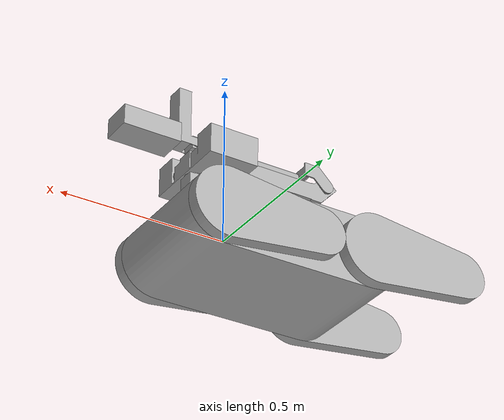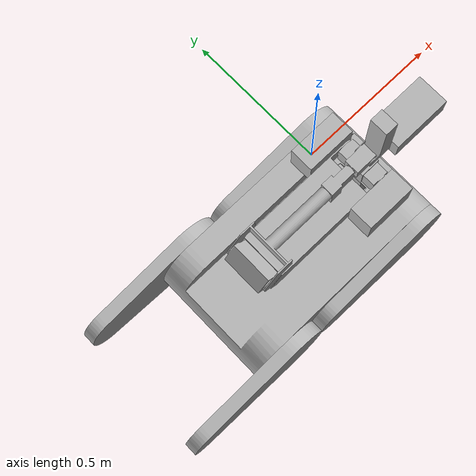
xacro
<?xml version="1.0" ?>
<robot name="robit" xmlns:xacro="http://www.ros.org/wiki/xacro">

<xacro:include filename="$(find robit_description)/urdf/materials.xacro" />
<xacro:include filename="$(find robit_description)/urdf/robit.trans" />
<xacro:include filename="$(find robit_description)/urdf/robit.gazebo" />
<link name="base_link">
  <inertial>
    <origin xyz="-0.24756919920884493 -0.19280000000000005 0.10020673393463417" rpy="0 0 0"/>
    <mass value="400.5532480230806"/>
    <inertia ixx="6.723167" iyy="16.901386" izz="21.012505" ixy="0.0" iyz="0.0" ixz="-0.002498"/>
  </inertial>
  <visual>
    <origin xyz="0 0 0" rpy="0 0 0"/>
    <geometry>
      <mesh filename="package://robit_description/meshes/base_link.stl" scale="0.001 0.001 0.001"/>
    </geometry>
    <material name="silver"/>
  </visual>
  <collision>
    <origin xyz="0 0 0" rpy="0 0 0"/>
    <geometry>
      <mesh filename="package://robit_description/meshes/base_link.stl" scale="0.001 0.001 0.001"/>
    </geometry>
  </collision>
</link>

<link name="flipper_v1__3__1">
  <inertial>
    <origin xyz="-0.12120891726297243 0.02001249999999982 -4.999999999311111e-07" rpy="0 0 0"/>
    <mass value="27.37463049164619"/>
    <inertia ixx="0.083875" iyy="0.553977" izz="0.477411" ixy="0.0" iyz="0.0" ixz="0.0"/>
  </inertial>
  <visual>
    <origin xyz="-0.0 0.0 -0.112381" rpy="0 0 0"/>
    <geometry>
      <mesh filename="package://robit_description/meshes/flipper_v1__3__1.stl" scale="0.001 0.001 0.001"/>
    </geometry>
    <material name="silver"/>
  </visual>
  <collision>
    <origin xyz="-0.0 0.0 -0.112381" rpy="0 0 0"/>
    <geometry>
      <mesh filename="package://robit_description/meshes/flipper_v1__3__1.stl" scale="0.001 0.001 0.001"/>
    </geometry>
  </collision>
</link>

<link name="flipper_v1_1">
  <inertial>
    <origin xyz="-0.12120891726297243 -0.02001249999999999 4.999999999866223e-07" rpy="0 0 0"/>
    <mass value="27.37463049164619"/>
    <inertia ixx="0.083875" iyy="0.553977" izz="0.477411" ixy="0.0" iyz="0.0" ixz="0.0"/>
  </inertial>
  <visual>
    <origin xyz="-0.0 0.3856 -0.11238" rpy="0 0 0"/>
    <geometry>
      <mesh filename="package://robit_description/meshes/flipper_v1_1.stl" scale="0.001 0.001 0.001"/>
    </geometry>
    <material name="silver"/>
  </visual>
  <collision>
    <origin xyz="-0.0 0.3856 -0.11238" rpy="0 0 0"/>
    <geometry>
      <mesh filename="package://robit_description/meshes/flipper_v1_1.stl" scale="0.001 0.001 0.001"/>
    </geometry>
  </collision>
</link>

<link name="flipper_v1__2__1">
  <inertial>
    <origin xyz="-0.1212089172629724 0.020012499999999978 -4.999999999172333e-07" rpy="0 0 0"/>
    <mass value="27.37463049164619"/>
    <inertia ixx="0.083875" iyy="0.553977" izz="0.477411" ixy="0.0" iyz="0.0" ixz="0.0"/>
  </inertial>
  <visual>
    <origin xyz="0.4953 0.0 -0.112381" rpy="0 0 0"/>
    <geometry>
      <mesh filename="package://robit_description/meshes/flipper_v1__2__1.stl" scale="0.001 0.001 0.001"/>
    </geometry>
    <material name="silver"/>
  </visual>
  <collision>
    <origin xyz="0.4953 0.0 -0.112381" rpy="0 0 0"/>
    <geometry>
      <mesh filename="package://robit_description/meshes/flipper_v1__2__1.stl" scale="0.001 0.001 0.001"/>
    </geometry>
  </collision>
</link>

<link name="flipper_v1__1__1">
  <inertial>
    <origin xyz="-0.1212089172629724 -0.02001249999999999 4.999999999866223e-07" rpy="0 0 0"/>
    <mass value="27.37463049164619"/>
    <inertia ixx="0.083875" iyy="0.553977" izz="0.477411" ixy="-0.0" iyz="0.0" ixz="0.0"/>
  </inertial>
  <visual>
    <origin xyz="0.4953 0.3856 -0.11238" rpy="0 0 0"/>
    <geometry>
      <mesh filename="package://robit_description/meshes/flipper_v1__1__1.stl" scale="0.001 0.001 0.001"/>
    </geometry>
    <material name="silver"/>
  </visual>
  <collision>
    <origin xyz="0.4953 0.3856 -0.11238" rpy="0 0 0"/>
    <geometry>
      <mesh filename="package://robit_description/meshes/flipper_v1__1__1.stl" scale="0.001 0.001 0.001"/>
    </geometry>
  </collision>
</link>

<link name="link_0_v1_1">
  <inertial>
    <origin xyz="-2.6020852139652106e-17 -1.1102230246251565e-16 0.06578846025001595" rpy="0 0 0"/>
    <mass value="3.0117344703981304"/>
    <inertia ixx="0.005075" iyy="0.005075" izz="0.001459" ixy="0.0" iyz="0.0" ixz="0.0"/>
  </inertial>
  <visual>
    <origin xyz="0.012 0.1928 -0.18038" rpy="0 0 0"/>
    <geometry>
      <mesh filename="package://robit_description/meshes/link_0_v1_1.stl" scale="0.001 0.001 0.001"/>
    </geometry>
    <material name="silver"/>
  </visual>
  <collision>
    <origin xyz="0.012 0.1928 -0.18038" rpy="0 0 0"/>
    <geometry>
      <mesh filename="package://robit_description/meshes/link_0_v1_1.stl" scale="0.001 0.001 0.001"/>
    </geometry>
  </collision>
</link>

<link name="link_1_v1_1">
  <inertial>
    <origin xyz="-0.039394228263145814 -1.6653345369377348e-16 0.04625624153739544" rpy="0 0 0"/>
    <mass value="21.785606731194406"/>
    <inertia ixx="0.254448" iyy="0.061359" izz="0.284201" ixy="-0.0" iyz="-0.0" ixz="0.002515"/>
  </inertial>
  <visual>
    <origin xyz="0.012 0.1928 -0.31238" rpy="0 0 0"/>
    <geometry>
      <mesh filename="package://robit_description/meshes/link_1_v1_1.stl" scale="0.001 0.001 0.001"/>
    </geometry>
    <material name="silver"/>
  </visual>
  <collision>
    <origin xyz="0.012 0.1928 -0.31238" rpy="0 0 0"/>
    <geometry>
      <mesh filename="package://robit_description/meshes/link_1_v1_1.stl" scale="0.001 0.001 0.001"/>
    </geometry>
  </collision>
</link>

<link name="link_2_v5_1">
  <inertial>
    <origin xyz="-0.25277949739829997 -0.06850000000000012 0.004067537852384506" rpy="0 0 0"/>
    <mass value="25.061881474743267"/>
    <inertia ixx="0.053179" iyy="0.344084" izz="0.378633" ixy="0.0" iyz="0.0" ixz="0.016978"/>
  </inertial>
  <visual>
    <origin xyz="0.012 0.1243 -0.346381" rpy="0 0 0"/>
    <geometry>
      <mesh filename="package://robit_description/meshes/link_2_v5_1.stl" scale="0.001 0.001 0.001"/>
    </geometry>
    <material name="silver"/>
  </visual>
  <collision>
    <origin xyz="0.012 0.1243 -0.346381" rpy="0 0 0"/>
    <geometry>
      <mesh filename="package://robit_description/meshes/link_2_v5_1.stl" scale="0.001 0.001 0.001"/>
    </geometry>
  </collision>
</link>

<link name="link_3_v3_1">
  <inertial>
    <origin xyz="0.20347863528799276 -0.06799999997155184 0.03213993670317289" rpy="0 0 0"/>
    <mass value="4.117252099821869"/>
    <inertia ixx="0.003331" iyy="0.044832" izz="0.046145" ixy="-0.0" iyz="0.0" ixz="0.001079"/>
  </inertial>
  <visual>
    <origin xyz="0.431168 0.1248 -0.381037" rpy="0 0 0"/>
    <geometry>
      <mesh filename="package://robit_description/meshes/link_3_v3_1.stl" scale="0.001 0.001 0.001"/>
    </geometry>
    <material name="silver"/>
  </visual>
  <collision>
    <origin xyz="0.431168 0.1248 -0.381037" rpy="0 0 0"/>
    <geometry>
      <mesh filename="package://robit_description/meshes/link_3_v3_1.stl" scale="0.001 0.001 0.001"/>
    </geometry>
  </collision>
</link>

<link name="link_4_v1_1">
  <inertial>
    <origin xyz="0.03631742506056769 2.979910762590521e-11 5.0489209091342246e-08" rpy="0 0 0"/>
    <mass value="1.0583786097940588"/>
    <inertia ixx="0.000338" iyy="0.000585" izz="0.000644" ixy="-0.0" iyz="0.0" ixz="-0.0"/>
  </inertial>
  <visual>
    <origin xyz="0.064384 0.1928 -0.418434" rpy="0 0 0"/>
    <geometry>
      <mesh filename="package://robit_description/meshes/link_4_v1_1.stl" scale="0.001 0.001 0.001"/>
    </geometry>
    <material name="silver"/>
  </visual>
  <collision>
    <origin xyz="0.064384 0.1928 -0.418434" rpy="0 0 0"/>
    <geometry>
      <mesh filename="package://robit_description/meshes/link_4_v1_1.stl" scale="0.001 0.001 0.001"/>
    </geometry>
  </collision>
</link>

<link name="link_5_v1_1">
  <inertial>
    <origin xyz="0.04370309439168263 -0.02599999997017921 0.07712670119676657" rpy="0 0 0"/>
    <mass value="3.317505240670039"/>
    <inertia ixx="0.010159" iyy="0.009789" izz="0.001388" ixy="0.0" iyz="0.0" ixz="-7.6e-05"/>
  </inertial>
  <visual>
    <origin xyz="0.007684 0.1668 -0.418434" rpy="0 0 0"/>
    <geometry>
      <mesh filename="package://robit_description/meshes/link_5_v1_1.stl" scale="0.001 0.001 0.001"/>
    </geometry>
    <material name="silver"/>
  </visual>
  <collision>
    <origin xyz="0.007684 0.1668 -0.418434" rpy="0 0 0"/>
    <geometry>
      <mesh filename="package://robit_description/meshes/link_5_v1_1.stl" scale="0.001 0.001 0.001"/>
    </geometry>
  </collision>
</link>

<link name="end_effector_v1_1">
  <inertial>
    <origin xyz="0.09492831983381403 2.9822616598451646e-11 5.048920731498541e-08" rpy="0 0 0"/>
    <mass value="9.548925481685224"/>
    <inertia ixx="0.011312" iyy="0.031229" izz="0.035821" ixy="0.0" iyz="-0.0" ixz="-0.0"/>
  </inertial>
  <visual>
    <origin xyz="-0.058316 0.1928 -0.418434" rpy="0 0 0"/>
    <geometry>
      <mesh filename="package://robit_description/meshes/end_effector_v1_1.stl" scale="0.001 0.001 0.001"/>
    </geometry>
    <material name="silver"/>
  </visual>
  <collision>
    <origin xyz="-0.058316 0.1928 -0.418434" rpy="0 0 0"/>
    <geometry>
      <mesh filename="package://robit_description/meshes/end_effector_v1_1.stl" scale="0.001 0.001 0.001"/>
    </geometry>
  </collision>
</link>

<joint name="Flipper 1" type="continuous">
  <origin xyz="0.0 0.0 0.112381" rpy="0 0 0"/>
  <parent link="base_link"/>
  <child link="flipper_v1__3__1"/>
  <axis xyz="0.0 1.0 0.0"/>
</joint>

<joint name="Flipper 2" type="continuous">
  <origin xyz="0.0 -0.3856 0.11238" rpy="0 0 0"/>
  <parent link="base_link"/>
  <child link="flipper_v1_1"/>
  <axis xyz="0.0 -1.0 -0.0"/>
</joint>

<joint name="Flipper 3" type="continuous">
  <origin xyz="-0.4953 0.0 0.112381" rpy="0 0 0"/>
  <parent link="base_link"/>
  <child link="flipper_v1__2__1"/>
  <axis xyz="0.0 1.0 0.0"/>
</joint>

<joint name="Flipper 4" type="continuous">
  <origin xyz="-0.4953 -0.3856 0.11238" rpy="0 0 0"/>
  <parent link="base_link"/>
  <child link="flipper_v1__1__1"/>
  <axis xyz="0.0 -1.0 -0.0"/>
</joint>

<joint name="Rigid" type="fixed">
  <origin xyz="-0.012 -0.1928 0.18038" rpy="0 0 0"/>
  <parent link="base_link"/>
  <child link="link_0_v1_1"/>
</joint>

<joint name="Joint 1" type="continuous">
  <origin xyz="0.0 0.0 0.132" rpy="0 0 0"/>
  <parent link="link_0_v1_1"/>
  <child link="link_1_v1_1"/>
  <axis xyz="0.0 -0.0 1.0"/>
</joint>

<joint name="Joint 2" type="continuous">
  <origin xyz="0.0 0.0685 0.034001" rpy="0 0 0"/>
  <parent link="link_1_v1_1"/>
  <child link="link_2_v5_1"/>
  <axis xyz="0.0 1.0 0.0"/>
</joint>

<joint name="Joint 3" type="continuous">
  <origin xyz="-0.419168 -0.0005 0.034656" rpy="0 0 0"/>
  <parent link="link_2_v5_1"/>
  <child link="link_3_v3_1"/>
  <axis xyz="0.0 1.0 0.0"/>
</joint>

<joint name="Joint 4" type="continuous">
  <origin xyz="0.366784 -0.068 0.037397" rpy="0 0 0"/>
  <parent link="link_3_v3_1"/>
  <child link="link_4_v1_1"/>
  <axis xyz="1.0 0.0 -0.0"/>
</joint>

<joint name="Joint 5" type="continuous">
  <origin xyz="0.0567 0.026 0.0" rpy="0 0 0"/>
  <parent link="link_4_v1_1"/>
  <child link="link_5_v1_1"/>
  <axis xyz="-0.0 1.0 0.0"/>
</joint>

<joint name="Joint 6" type="continuous">
  <origin xyz="0.066 -0.026 0.0" rpy="0 0 0"/>
  <parent link="link_5_v1_1"/>
  <child link="end_effector_v1_1"/>
  <axis xyz="1.0 0.0 -0.0"/>
</joint>

</robot>

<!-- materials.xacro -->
<robot name="robit" xmlns:xacro="http://www.ros.org/wiki/xacro" >

<material name="silver">
  <color rgba="0.700 0.700 0.700 1.000"/>
</material>

</robot>

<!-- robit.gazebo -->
<robot name="robit" xmlns:xacro="http://www.ros.org/wiki/xacro" >

<xacro:property name="body_color" value="Gazebo/Silver" />

<gazebo>
  <plugin name="control" filename="libgazebo_ros_control.so"/>
</gazebo>
<gazebo reference="base_link">
  <material>${body_color}</material>
  <mu1>0.2</mu1>
  <mu2>0.2</mu2>
  <selfCollide>true</selfCollide>
  <gravity>true</gravity>
</gazebo>

<gazebo reference="flipper_v1__3__1">
  <material>${body_color}</material>
  <mu1>0.2</mu1>
  <mu2>0.2</mu2>
  <selfCollide>true</selfCollide>
</gazebo>

<gazebo reference="flipper_v1_1">
  <material>${body_color}</material>
  <mu1>0.2</mu1>
  <mu2>0.2</mu2>
  <selfCollide>true</selfCollide>
</gazebo>

<gazebo reference="flipper_v1__2__1">
  <material>${body_color}</material>
  <mu1>0.2</mu1>
  <mu2>0.2</mu2>
  <selfCollide>true</selfCollide>
</gazebo>

<gazebo reference="flipper_v1__1__1">
  <material>${body_color}</material>
  <mu1>0.2</mu1>
  <mu2>0.2</mu2>
  <selfCollide>true</selfCollide>
</gazebo>

<gazebo reference="link_0_v1_1">
  <material>${body_color}</material>
  <mu1>0.2</mu1>
  <mu2>0.2</mu2>
  <selfCollide>true</selfCollide>
</gazebo>

<gazebo reference="link_1_v1_1">
  <material>${body_color}</material>
  <mu1>0.2</mu1>
  <mu2>0.2</mu2>
  <selfCollide>true</selfCollide>
</gazebo>

<gazebo reference="link_2_v5_1">
  <material>${body_color}</material>
  <mu1>0.2</mu1>
  <mu2>0.2</mu2>
  <selfCollide>true</selfCollide>
</gazebo>

<gazebo reference="link_3_v3_1">
  <material>${body_color}</material>
  <mu1>0.2</mu1>
  <mu2>0.2</mu2>
  <selfCollide>true</selfCollide>
</gazebo>

<gazebo reference="link_4_v1_1">
  <material>${body_color}</material>
  <mu1>0.2</mu1>
  <mu2>0.2</mu2>
  <selfCollide>true</selfCollide>
</gazebo>

<gazebo reference="link_5_v1_1">
  <material>${body_color}</material>
  <mu1>0.2</mu1>
  <mu2>0.2</mu2>
  <selfCollide>true</selfCollide>
</gazebo>

<gazebo reference="end_effector_v1_1">
  <material>${body_color}</material>
  <mu1>0.2</mu1>
  <mu2>0.2</mu2>
  <selfCollide>true</selfCollide>
</gazebo>

</robot>
